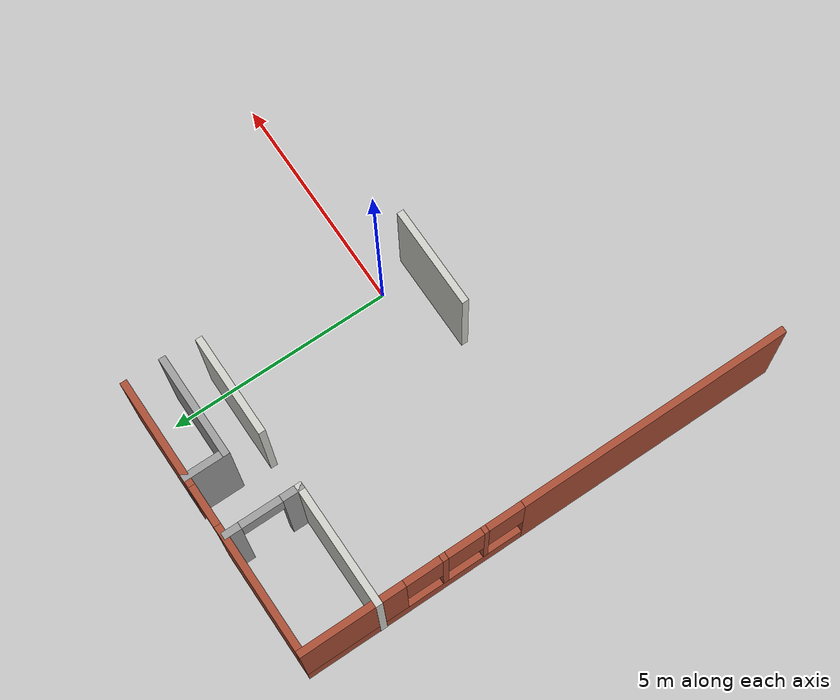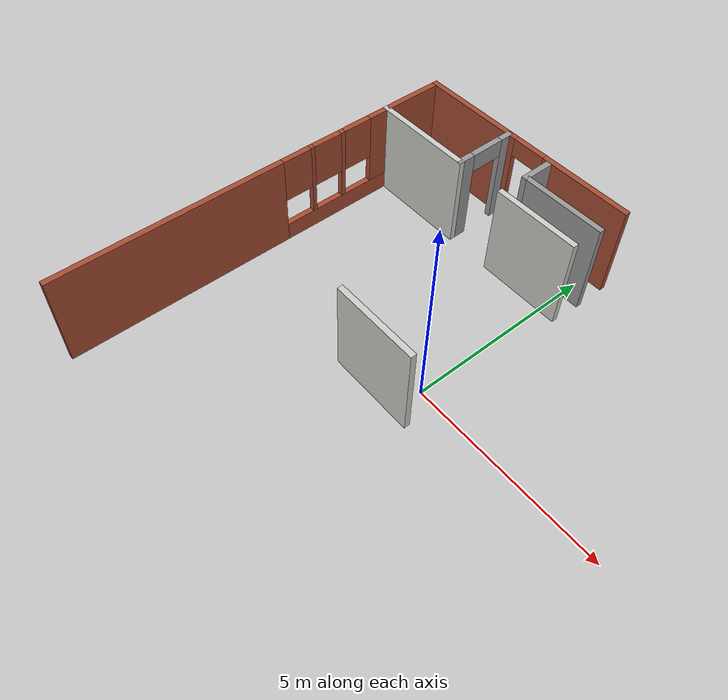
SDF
<sdf version="1.6">
 <model name="project1_building">
  <link name="Wall_0">
   <pose>-5.67233 0 0 0 -0 1.5708</pose>
   <visual name="Wall_0_Visual_0">
    <pose>-2.47085 0 1.25 0 -0 0</pose>
    <geometry><box><size>6.0583 0.15 2.5</size></box></geometry>
    <material>
     <script><uri>file://media/materials/scripts/gazebo.material</uri><name>Gazebo/Bricks</name></script>
     <ambient>1 1 1 1</ambient>
     <shader type="pixel"/>
     <diffuse>1 1 1 1</diffuse>
     <specular>0.2 0.2 0.2 1</specular>
     <emissive>0 0 0 1</emissive>
    </material>
    <meta><layer>0</layer></meta>
   </visual>
   <visual name="Wall_0_Visual_1">
    <pose>3.02915 0 0.25 0 -0 0</pose>
    <geometry><box><size>4.9417 0.15 0.5</size></box></geometry>
    <material>
     <script><uri>file://media/materials/scripts/gazebo.material</uri><name>Gazebo/Bricks</name></script>
     <ambient>1 1 1 1</ambient>
     <shader type="pixel"/>
     <diffuse>1 1 1 1</diffuse>
     <specular>0.2 0.2 0.2 1</specular>
     <emissive>0 0 0 1</emissive>
    </material>
    <meta><layer>0</layer></meta>
   </visual>
   <visual name="Wall_0_Visual_2">
    <pose>1.41086 0 1.5 0 -0 0</pose>
    <geometry><box><size>0.105111 0.15 2</size></box></geometry>
    <material>
     <script><uri>file://media/materials/scripts/gazebo.material</uri><name>Gazebo/Bricks</name></script>
     <ambient>1 1 1 1</ambient>
     <shader type="pixel"/>
     <diffuse>1 1 1 1</diffuse>
     <specular>0.2 0.2 0.2 1</specular>
     <emissive>0 0 0 1</emissive>
    </material>
    <meta><layer>0</layer></meta>
   </visual>
   <visual name="Wall_0_Visual_3">
    <pose>2.32602 0 1.5 0 -0 0</pose>
    <geometry><box><size>0.125224 0.15 2</size></box></geometry>
    <material>
     <script><uri>file://media/materials/scripts/gazebo.material</uri><name>Gazebo/Bricks</name></script>
     <ambient>1 1 1 1</ambient>
     <shader type="pixel"/>
     <diffuse>1 1 1 1</diffuse>
     <specular>0.2 0.2 0.2 1</specular>
     <emissive>0 0 0 1</emissive>
    </material>
    <meta><layer>0</layer></meta>
   </visual>
   <visual name="Wall_0_Visual_4">
    <pose>4.34432 0 1.5 0 -0 0</pose>
    <geometry><box><size>2.31136 0.15 2</size></box></geometry>
    <material>
     <script><uri>file://media/materials/scripts/gazebo.material</uri><name>Gazebo/Bricks</name></script>
     <ambient>1 1 1 1</ambient>
     <shader type="pixel"/>
     <diffuse>1 1 1 1</diffuse>
     <specular>0.2 0.2 0.2 1</specular>
     <emissive>0 0 0 1</emissive>
    </material>
    <meta><layer>0</layer></meta>
   </visual>
   <visual name="Wall_0_Visual_5">
    <pose>0.9583 0 1.9 0 -0 0</pose>
    <geometry><box><size>0.8 0.15 1.2</size></box></geometry>
    <material>
     <script><uri>file://media/materials/scripts/gazebo.material</uri><name>Gazebo/Bricks</name></script>
     <ambient>1 1 1 1</ambient>
     <shader type="pixel"/>
     <diffuse>1 1 1 1</diffuse>
     <specular>0.2 0.2 0.2 1</specular>
     <emissive>0 0 0 1</emissive>
    </material>
    <meta><layer>0</layer></meta>
   </visual>
   <visual name="Wall_0_Visual_6">
    <pose>1.86341 0 1.9 0 -0 0</pose>
    <geometry><box><size>0.8 0.15 1.2</size></box></geometry>
    <material>
     <script><uri>file://media/materials/scripts/gazebo.material</uri><name>Gazebo/Bricks</name></script>
     <ambient>1 1 1 1</ambient>
     <shader type="pixel"/>
     <diffuse>1 1 1 1</diffuse>
     <specular>0.2 0.2 0.2 1</specular>
     <emissive>0 0 0 1</emissive>
    </material>
    <meta><layer>0</layer></meta>
   </visual>
   <visual name="Wall_0_Visual_7">
    <pose>2.78864 0 1.9 0 -0 0</pose>
    <geometry><box><size>0.8 0.15 1.2</size></box></geometry>
    <material>
     <script><uri>file://media/materials/scripts/gazebo.material</uri><name>Gazebo/Bricks</name></script>
     <ambient>1 1 1 1</ambient>
     <shader type="pixel"/>
     <diffuse>1 1 1 1</diffuse>
     <specular>0.2 0.2 0.2 1</specular>
     <emissive>0 0 0 1</emissive>
    </material>
    <meta><layer>0</layer></meta>
   </visual>
   <collision name="Wall_0_Collision_1">
    <pose>3.02915 0 0.25 0 -0 0</pose>
    <geometry><box><size>4.9417 0.15 0.5</size></box></geometry>
    <surface>
     <friction>
      <ode><mu>1</mu><mu2>1</mu2><fdir1>0 0 0</fdir1><slip1>0</slip1><slip2>0</slip2></ode>
      <torsional>
       <coefficient>1</coefficient>
       <patch_radius>0</patch_radius>
       <surface_radius>0</surface_radius>
       <use_patch_radius>1</use_patch_radius>
       <ode><slip>0</slip></ode>
      </torsional>
     </friction>
     <bounce><restitution_coefficient>0</restitution_coefficient><threshold>1e+06</threshold></bounce>
     <contact>
      <collide_without_contact>0</collide_without_contact>
      <collide_without_contact_bitmask>1</collide_without_contact_bitmask>
      <collide_bitmask>1</collide_bitmask>
      <ode>
       <soft_cfm>0</soft_cfm>
       <soft_erp>0.2</soft_erp>
       <kp>1e+13</kp>
       <kd>1</kd>
       <max_vel>0.01</max_vel>
       <min_depth>0</min_depth>
      </ode>
      <bullet>
       <split_impulse>1</split_impulse>
       <split_impulse_penetration_threshold>-0.01</split_impulse_penetration_threshold>
       <soft_cfm>0</soft_cfm>
       <soft_erp>0.2</soft_erp>
       <kp>1e+13</kp>
       <kd>1</kd>
      </bullet>
     </contact>
    </surface>
   </collision>
   <collision name="Wall_0_Collision_0">
    <pose>-2.47085 0 1.25 0 -0 0</pose>
    <geometry><box><size>6.0583 0.15 2.5</size></box></geometry>
    <surface>
     <friction>
      <ode><mu>1</mu><mu2>1</mu2><fdir1>0 0 0</fdir1><slip1>0</slip1><slip2>0</slip2></ode>
      <torsional>
       <coefficient>1</coefficient>
       <patch_radius>0</patch_radius>
       <surface_radius>0</surface_radius>
       <use_patch_radius>1</use_patch_radius>
       <ode><slip>0</slip></ode>
      </torsional>
     </friction>
     <bounce><restitution_coefficient>0</restitution_coefficient><threshold>1e+06</threshold></bounce>
     <contact>
      <collide_without_contact>0</collide_without_contact>
      <collide_without_contact_bitmask>1</collide_without_contact_bitmask>
      <collide_bitmask>1</collide_bitmask>
      <ode>
       <soft_cfm>0</soft_cfm>
       <soft_erp>0.2</soft_erp>
       <kp>1e+13</kp>
       <kd>1</kd>
       <max_vel>0.01</max_vel>
       <min_depth>0</min_depth>
      </ode>
      <bullet>
       <split_impulse>1</split_impulse>
       <split_impulse_penetration_threshold>-0.01</split_impulse_penetration_threshold>
       <soft_cfm>0</soft_cfm>
       <soft_erp>0.2</soft_erp>
       <kp>1e+13</kp>
       <kd>1</kd>
      </bullet>
     </contact>
    </surface>
   </collision>
   <collision name="Wall_0_Collision_2">
    <pose>1.41086 0 1.5 0 -0 0</pose>
    <geometry><box><size>0.105111 0.15 2</size></box></geometry>
    <surface>
     <friction>
      <ode><mu>1</mu><mu2>1</mu2><fdir1>0 0 0</fdir1><slip1>0</slip1><slip2>0</slip2></ode>
      <torsional>
       <coefficient>1</coefficient>
       <patch_radius>0</patch_radius>
       <surface_radius>0</surface_radius>
       <use_patch_radius>1</use_patch_radius>
       <ode><slip>0</slip></ode>
      </torsional>
     </friction>
     <bounce><restitution_coefficient>0</restitution_coefficient><threshold>1e+06</threshold></bounce>
     <contact>
      <collide_without_contact>0</collide_without_contact>
      <collide_without_contact_bitmask>1</collide_without_contact_bitmask>
      <collide_bitmask>1</collide_bitmask>
      <ode>
       <soft_cfm>0</soft_cfm>
       <soft_erp>0.2</soft_erp>
       <kp>1e+13</kp>
       <kd>1</kd>
       <max_vel>0.01</max_vel>
       <min_depth>0</min_depth>
      </ode>
      <bullet>
       <split_impulse>1</split_impulse>
       <split_impulse_penetration_threshold>-0.01</split_impulse_penetration_threshold>
       <soft_cfm>0</soft_cfm>
       <soft_erp>0.2</soft_erp>
       <kp>1e+13</kp>
       <kd>1</kd>
      </bullet>
     </contact>
    </surface>
   </collision>
   <collision name="Wall_0_Collision_5">
    <pose>0.9583 0 1.9 0 -0 0</pose>
    <geometry><box><size>0.8 0.15 1.2</size></box></geometry>
    <surface>
     <friction>
      <ode><mu>1</mu><mu2>1</mu2><fdir1>0 0 0</fdir1><slip1>0</slip1><slip2>0</slip2></ode>
      <torsional>
       <coefficient>1</coefficient>
       <patch_radius>0</patch_radius>
       <surface_radius>0</surface_radius>
       <use_patch_radius>1</use_patch_radius>
       <ode><slip>0</slip></ode>
      </torsional>
     </friction>
     <bounce><restitution_coefficient>0</restitution_coefficient><threshold>1e+06</threshold></bounce>
     <contact>
      <collide_without_contact>0</collide_without_contact>
      <collide_without_contact_bitmask>1</collide_without_contact_bitmask>
      <collide_bitmask>1</collide_bitmask>
      <ode>
       <soft_cfm>0</soft_cfm>
       <soft_erp>0.2</soft_erp>
       <kp>1e+13</kp>
       <kd>1</kd>
       <max_vel>0.01</max_vel>
       <min_depth>0</min_depth>
      </ode>
      <bullet>
       <split_impulse>1</split_impulse>
       <split_impulse_penetration_threshold>-0.01</split_impulse_penetration_threshold>
       <soft_cfm>0</soft_cfm>
       <soft_erp>0.2</soft_erp>
       <kp>1e+13</kp>
       <kd>1</kd>
      </bullet>
     </contact>
    </surface>
   </collision>
   <collision name="Wall_0_Collision_3">
    <pose>2.32602 0 1.5 0 -0 0</pose>
    <geometry><box><size>0.125224 0.15 2</size></box></geometry>
    <surface>
     <friction>
      <ode><mu>1</mu><mu2>1</mu2><fdir1>0 0 0</fdir1><slip1>0</slip1><slip2>0</slip2></ode>
      <torsional>
       <coefficient>1</coefficient>
       <patch_radius>0</patch_radius>
       <surface_radius>0</surface_radius>
       <use_patch_radius>1</use_patch_radius>
       <ode><slip>0</slip></ode>
      </torsional>
     </friction>
     <bounce><restitution_coefficient>0</restitution_coefficient><threshold>1e+06</threshold></bounce>
     <contact>
      <collide_without_contact>0</collide_without_contact>
      <collide_without_contact_bitmask>1</collide_without_contact_bitmask>
      <collide_bitmask>1</collide_bitmask>
      <ode>
       <soft_cfm>0</soft_cfm>
       <soft_erp>0.2</soft_erp>
       <kp>1e+13</kp>
       <kd>1</kd>
       <max_vel>0.01</max_vel>
       <min_depth>0</min_depth>
      </ode>
      <bullet>
       <split_impulse>1</split_impulse>
       <split_impulse_penetration_threshold>-0.01</split_impulse_penetration_threshold>
       <soft_cfm>0</soft_cfm>
       <soft_erp>0.2</soft_erp>
       <kp>1e+13</kp>
       <kd>1</kd>
      </bullet>
     </contact>
    </surface>
   </collision>
   <collision name="Wall_0_Collision_4">
    <pose>4.34432 0 1.5 0 -0 0</pose>
    <geometry><box><size>2.31136 0.15 2</size></box></geometry>
    <surface>
     <friction>
      <ode><mu>1</mu><mu2>1</mu2><fdir1>0 0 0</fdir1><slip1>0</slip1><slip2>0</slip2></ode>
      <torsional>
       <coefficient>1</coefficient>
       <patch_radius>0</patch_radius>
       <surface_radius>0</surface_radius>
       <use_patch_radius>1</use_patch_radius>
       <ode><slip>0</slip></ode>
      </torsional>
     </friction>
     <bounce><restitution_coefficient>0</restitution_coefficient><threshold>1e+06</threshold></bounce>
     <contact>
      <collide_without_contact>0</collide_without_contact>
      <collide_without_contact_bitmask>1</collide_without_contact_bitmask>
      <collide_bitmask>1</collide_bitmask>
      <ode>
       <soft_cfm>0</soft_cfm>
       <soft_erp>0.2</soft_erp>
       <kp>1e+13</kp>
       <kd>1</kd>
       <max_vel>0.01</max_vel>
       <min_depth>0</min_depth>
      </ode>
      <bullet>
       <split_impulse>1</split_impulse>
       <split_impulse_penetration_threshold>-0.01</split_impulse_penetration_threshold>
       <soft_cfm>0</soft_cfm>
       <soft_erp>0.2</soft_erp>
       <kp>1e+13</kp>
       <kd>1</kd>
      </bullet>
     </contact>
    </surface>
   </collision>
   <collision name="Wall_0_Collision_6">
    <pose>1.86341 0 1.9 0 -0 0</pose>
    <geometry><box><size>0.8 0.15 1.2</size></box></geometry>
    <surface>
     <friction>
      <ode><mu>1</mu><mu2>1</mu2><fdir1>0 0 0</fdir1><slip1>0</slip1><slip2>0</slip2></ode>
      <torsional>
       <coefficient>1</coefficient>
       <patch_radius>0</patch_radius>
       <surface_radius>0</surface_radius>
       <use_patch_radius>1</use_patch_radius>
       <ode><slip>0</slip></ode>
      </torsional>
     </friction>
     <bounce><restitution_coefficient>0</restitution_coefficient><threshold>1e+06</threshold></bounce>
     <contact>
      <collide_without_contact>0</collide_without_contact>
      <collide_without_contact_bitmask>1</collide_without_contact_bitmask>
      <collide_bitmask>1</collide_bitmask>
      <ode>
       <soft_cfm>0</soft_cfm>
       <soft_erp>0.2</soft_erp>
       <kp>1e+13</kp>
       <kd>1</kd>
       <max_vel>0.01</max_vel>
       <min_depth>0</min_depth>
      </ode>
      <bullet>
       <split_impulse>1</split_impulse>
       <split_impulse_penetration_threshold>-0.01</split_impulse_penetration_threshold>
       <soft_cfm>0</soft_cfm>
       <soft_erp>0.2</soft_erp>
       <kp>1e+13</kp>
       <kd>1</kd>
      </bullet>
     </contact>
    </surface>
   </collision>
   <collision name="Wall_0_Collision_7">
    <pose>2.78864 0 1.9 0 -0 0</pose>
    <geometry><box><size>0.8 0.15 1.2</size></box></geometry>
    <surface>
     <friction>
      <ode><mu>1</mu><mu2>1</mu2><fdir1>0 0 0</fdir1><slip1>0</slip1><slip2>0</slip2></ode>
      <torsional>
       <coefficient>1</coefficient>
       <patch_radius>0</patch_radius>
       <surface_radius>0</surface_radius>
       <use_patch_radius>1</use_patch_radius>
       <ode><slip>0</slip></ode>
      </torsional>
     </friction>
     <bounce><restitution_coefficient>0</restitution_coefficient><threshold>1e+06</threshold></bounce>
     <contact>
      <collide_without_contact>0</collide_without_contact>
      <collide_without_contact_bitmask>1</collide_without_contact_bitmask>
      <collide_bitmask>1</collide_bitmask>
      <ode>
       <soft_cfm>0</soft_cfm>
       <soft_erp>0.2</soft_erp>
       <kp>1e+13</kp>
       <kd>1</kd>
       <max_vel>0.01</max_vel>
       <min_depth>0</min_depth>
      </ode>
      <bullet>
       <split_impulse>1</split_impulse>
       <split_impulse_penetration_threshold>-0.01</split_impulse_penetration_threshold>
       <soft_cfm>0</soft_cfm>
       <soft_erp>0.2</soft_erp>
       <kp>1e+13</kp>
       <kd>1</kd>
      </bullet>
     </contact>
    </surface>
   </collision>
  </link>
  <link name="Wall_1">
   <pose>-2.62233 5.425 0 0 -0 0</pose>
   <visual name="Wall_1_Visual_0">
    <pose>-1.67324 0 1.25 0 -0 0</pose>
    <geometry><box><size>2.90351 0.15 2.5</size></box></geometry>
    <material>
     <script><uri>file://media/materials/scripts/gazebo.material</uri><name>Gazebo/Bricks</name></script>
     <ambient>1 1 1 1</ambient>
     <shader type="pixel"/>
     <diffuse>1 1 1 1</diffuse>
     <specular>0.2 0.2 0.2 1</specular>
     <emissive>0 0 0 1</emissive>
    </material>
    <meta><layer>0</layer></meta>
   </visual>
   <visual name="Wall_1_Visual_1">
    <pose>1.90176 0 1.25 0 -0 0</pose>
    <geometry><box><size>2.44649 0.15 2.5</size></box></geometry>
    <material>
     <script><uri>file://media/materials/scripts/gazebo.material</uri><name>Gazebo/Bricks</name></script>
     <ambient>1 1 1 1</ambient>
     <shader type="pixel"/>
     <diffuse>1 1 1 1</diffuse>
     <specular>0.2 0.2 0.2 1</specular>
     <emissive>0 0 0 1</emissive>
    </material>
    <meta><layer>0</layer></meta>
   </visual>
   <visual name="Wall_1_Visual_2">
    <pose>0.228513 0 2.25 0 -0 0</pose>
    <geometry><box><size>0.9 0.15 0.5</size></box></geometry>
    <material>
     <script><uri>file://media/materials/scripts/gazebo.material</uri><name>Gazebo/Bricks</name></script>
     <ambient>1 1 1 1</ambient>
     <shader type="pixel"/>
     <diffuse>1 1 1 1</diffuse>
     <specular>0.2 0.2 0.2 1</specular>
     <emissive>0 0 0 1</emissive>
    </material>
    <meta><layer>0</layer></meta>
   </visual>
   <collision name="Wall_1_Collision_0">
    <pose>-1.67324 0 1.25 0 -0 0</pose>
    <geometry><box><size>2.90351 0.15 2.5</size></box></geometry>
    <surface>
     <friction>
      <ode><mu>1</mu><mu2>1</mu2><fdir1>0 0 0</fdir1><slip1>0</slip1><slip2>0</slip2></ode>
      <torsional>
       <coefficient>1</coefficient>
       <patch_radius>0</patch_radius>
       <surface_radius>0</surface_radius>
       <use_patch_radius>1</use_patch_radius>
       <ode><slip>0</slip></ode>
      </torsional>
     </friction>
     <bounce><restitution_coefficient>0</restitution_coefficient><threshold>1e+06</threshold></bounce>
     <contact>
      <collide_without_contact>0</collide_without_contact>
      <collide_without_contact_bitmask>1</collide_without_contact_bitmask>
      <collide_bitmask>1</collide_bitmask>
      <ode>
       <soft_cfm>0</soft_cfm>
       <soft_erp>0.2</soft_erp>
       <kp>1e+13</kp>
       <kd>1</kd>
       <max_vel>0.01</max_vel>
       <min_depth>0</min_depth>
      </ode>
      <bullet>
       <split_impulse>1</split_impulse>
       <split_impulse_penetration_threshold>-0.01</split_impulse_penetration_threshold>
       <soft_cfm>0</soft_cfm>
       <soft_erp>0.2</soft_erp>
       <kp>1e+13</kp>
       <kd>1</kd>
      </bullet>
     </contact>
    </surface>
   </collision>
   <collision name="Wall_1_Collision_2">
    <pose>0.228513 0 2.25 0 -0 0</pose>
    <geometry><box><size>0.9 0.15 0.5</size></box></geometry>
    <surface>
     <friction>
      <ode><mu>1</mu><mu2>1</mu2><fdir1>0 0 0</fdir1><slip1>0</slip1><slip2>0</slip2></ode>
      <torsional>
       <coefficient>1</coefficient>
       <patch_radius>0</patch_radius>
       <surface_radius>0</surface_radius>
       <use_patch_radius>1</use_patch_radius>
       <ode><slip>0</slip></ode>
      </torsional>
     </friction>
     <bounce><restitution_coefficient>0</restitution_coefficient><threshold>1e+06</threshold></bounce>
     <contact>
      <collide_without_contact>0</collide_without_contact>
      <collide_without_contact_bitmask>1</collide_without_contact_bitmask>
      <collide_bitmask>1</collide_bitmask>
      <ode>
       <soft_cfm>0</soft_cfm>
       <soft_erp>0.2</soft_erp>
       <kp>1e+13</kp>
       <kd>1</kd>
       <max_vel>0.01</max_vel>
       <min_depth>0</min_depth>
      </ode>
      <bullet>
       <split_impulse>1</split_impulse>
       <split_impulse_penetration_threshold>-0.01</split_impulse_penetration_threshold>
       <soft_cfm>0</soft_cfm>
       <soft_erp>0.2</soft_erp>
       <kp>1e+13</kp>
       <kd>1</kd>
      </bullet>
     </contact>
    </surface>
   </collision>
   <collision name="Wall_1_Collision_1">
    <pose>1.90176 0 1.25 0 -0 0</pose>
    <geometry><box><size>2.44649 0.15 2.5</size></box></geometry>
    <surface>
     <friction>
      <ode><mu>1</mu><mu2>1</mu2><fdir1>0 0 0</fdir1><slip1>0</slip1><slip2>0</slip2></ode>
      <torsional>
       <coefficient>1</coefficient>
       <patch_radius>0</patch_radius>
       <surface_radius>0</surface_radius>
       <use_patch_radius>1</use_patch_radius>
       <ode><slip>0</slip></ode>
      </torsional>
     </friction>
     <bounce><restitution_coefficient>0</restitution_coefficient><threshold>1e+06</threshold></bounce>
     <contact>
      <collide_without_contact>0</collide_without_contact>
      <collide_without_contact_bitmask>1</collide_without_contact_bitmask>
      <collide_bitmask>1</collide_bitmask>
      <ode>
       <soft_cfm>0</soft_cfm>
       <soft_erp>0.2</soft_erp>
       <kp>1e+13</kp>
       <kd>1</kd>
       <max_vel>0.01</max_vel>
       <min_depth>0</min_depth>
      </ode>
      <bullet>
       <split_impulse>1</split_impulse>
       <split_impulse_penetration_threshold>-0.01</split_impulse_penetration_threshold>
       <soft_cfm>0</soft_cfm>
       <soft_erp>0.2</soft_erp>
       <kp>1e+13</kp>
       <kd>1</kd>
      </bullet>
     </contact>
    </surface>
   </collision>
  </link>
  <link name="Wall_16">
   <pose>-0.652617 4.575 0 0 -0 3.14159</pose>
   <visual name="Wall_16_Visual">
    <pose>0 0 1.25 0 -0 0</pose>
    <geometry><box><size>2.31058 0.15 2.5</size></box></geometry>
    <material>
     <script><uri>file://media/materials/scripts/gazebo.material</uri><name>Gazebo/Grey</name></script>
     <ambient>1 1 1 1</ambient>
     <shader type="pixel"/>
     <diffuse>0.7 0.7 0.7 1</diffuse>
     <specular>0.01 0.01 0.01 1</specular>
     <emissive>0 0 0 1</emissive>
    </material>
    <meta><layer>0</layer></meta>
   </visual>
   <collision name="Wall_16_Collision">
    <pose>0 0 1.25 0 -0 0</pose>
    <geometry><box><size>2.31058 0.15 2.5</size></box></geometry>
    <surface>
     <friction>
      <ode><mu>1</mu><mu2>1</mu2><fdir1>0 0 0</fdir1><slip1>0</slip1><slip2>0</slip2></ode>
      <torsional>
       <coefficient>1</coefficient>
       <patch_radius>0</patch_radius>
       <surface_radius>0</surface_radius>
       <use_patch_radius>1</use_patch_radius>
       <ode><slip>0</slip></ode>
      </torsional>
     </friction>
     <bounce><restitution_coefficient>0</restitution_coefficient><threshold>1e+06</threshold></bounce>
     <contact>
      <collide_without_contact>0</collide_without_contact>
      <collide_without_contact_bitmask>1</collide_without_contact_bitmask>
      <collide_bitmask>1</collide_bitmask>
      <ode>
       <soft_cfm>0</soft_cfm>
       <soft_erp>0.2</soft_erp>
       <kp>1e+13</kp>
       <kd>1</kd>
       <max_vel>0.01</max_vel>
       <min_depth>0</min_depth>
      </ode>
      <bullet>
       <split_impulse>1</split_impulse>
       <split_impulse_penetration_threshold>-0.01</split_impulse_penetration_threshold>
       <soft_cfm>0</soft_cfm>
       <soft_erp>0.2</soft_erp>
       <kp>1e+13</kp>
       <kd>1</kd>
      </bullet>
     </contact>
    </surface>
   </collision>
  </link>
  <link name="Wall_17">
   <pose>-1.73291 5 0 0 -0 1.5708</pose>
   <visual name="Wall_17_Visual">
    <pose>0 0 1.25 0 -0 0</pose>
    <geometry><box><size>1 0.15 2.5</size></box></geometry>
    <material>
     <script><uri>file://media/materials/scripts/gazebo.material</uri><name>Gazebo/Grey</name></script>
     <ambient>1 1 1 1</ambient>
     <shader type="pixel"/>
     <diffuse>0.7 0.7 0.7 1</diffuse>
     <specular>0.01 0.01 0.01 1</specular>
     <emissive>0 0 0 1</emissive>
    </material>
    <meta><layer>0</layer></meta>
   </visual>
   <collision name="Wall_17_Collision">
    <pose>0 0 1.25 0 -0 0</pose>
    <geometry><box><size>1 0.15 2.5</size></box></geometry>
    <surface>
     <friction>
      <ode><mu>1</mu><mu2>1</mu2><fdir1>0 0 0</fdir1><slip1>0</slip1><slip2>0</slip2></ode>
      <torsional>
       <coefficient>1</coefficient>
       <patch_radius>0</patch_radius>
       <surface_radius>0</surface_radius>
       <use_patch_radius>1</use_patch_radius>
       <ode><slip>0</slip></ode>
      </torsional>
     </friction>
     <bounce><restitution_coefficient>0</restitution_coefficient><threshold>1e+06</threshold></bounce>
     <contact>
      <collide_without_contact>0</collide_without_contact>
      <collide_without_contact_bitmask>1</collide_without_contact_bitmask>
      <collide_bitmask>1</collide_bitmask>
      <ode>
       <soft_cfm>0</soft_cfm>
       <soft_erp>0.2</soft_erp>
       <kp>1e+13</kp>
       <kd>1</kd>
       <max_vel>0.01</max_vel>
       <min_depth>0</min_depth>
      </ode>
      <bullet>
       <split_impulse>1</split_impulse>
       <split_impulse_penetration_threshold>-0.01</split_impulse_penetration_threshold>
       <soft_cfm>0</soft_cfm>
       <soft_erp>0.2</soft_erp>
       <kp>1e+13</kp>
       <kd>1</kd>
      </bullet>
     </contact>
    </surface>
   </collision>
  </link>
  <link name="Wall_19">
   <pose>-3.07768 4.58329 0 0 0 -1.5708</pose>
   <visual name="Wall_19_Visual_0">
    <pose>-0.690399 0 1.25 0 -0 0</pose>
    <geometry><box><size>0.369202 0.15 2.5</size></box></geometry>
    <material>
     <script><uri>file://media/materials/scripts/gazebo.material</uri><name>Gazebo/Grey</name></script>
     <ambient>1 1 1 1</ambient>
     <shader type="pixel"/>
     <diffuse>0.7 0.7 0.7 1</diffuse>
     <specular>0.01 0.01 0.01 1</specular>
     <emissive>0 0 0 1</emissive>
    </material>
    <meta><layer>0</layer></meta>
   </visual>
   <visual name="Wall_19_Visual_1">
    <pose>0.634601 0 1.25 0 -0 0</pose>
    <geometry><box><size>0.480798 0.15 2.5</size></box></geometry>
    <material>
     <script><uri>file://media/materials/scripts/gazebo.material</uri><name>Gazebo/Grey</name></script>
     <ambient>1 1 1 1</ambient>
     <shader type="pixel"/>
     <diffuse>0.7 0.7 0.7 1</diffuse>
     <specular>0.01 0.01 0.01 1</specular>
     <emissive>0 0 0 1</emissive>
    </material>
    <meta><layer>0</layer></meta>
   </visual>
   <visual name="Wall_19_Visual_2">
    <pose>-0.055798 0 2.25 0 -0 0</pose>
    <geometry><box><size>0.9 0.15 0.5</size></box></geometry>
    <material>
     <script><uri>file://media/materials/scripts/gazebo.material</uri><name>Gazebo/Grey</name></script>
     <ambient>1 1 1 1</ambient>
     <shader type="pixel"/>
     <diffuse>0.7 0.7 0.7 1</diffuse>
     <specular>0.01 0.01 0.01 1</specular>
     <emissive>0 0 0 1</emissive>
    </material>
    <meta><layer>0</layer></meta>
   </visual>
   <collision name="Wall_19_Collision_0">
    <pose>-0.690399 0 1.25 0 -0 0</pose>
    <geometry><box><size>0.369202 0.15 2.5</size></box></geometry>
    <surface>
     <friction>
      <ode><mu>1</mu><mu2>1</mu2><fdir1>0 0 0</fdir1><slip1>0</slip1><slip2>0</slip2></ode>
      <torsional>
       <coefficient>1</coefficient>
       <patch_radius>0</patch_radius>
       <surface_radius>0</surface_radius>
       <use_patch_radius>1</use_patch_radius>
       <ode><slip>0</slip></ode>
      </torsional>
     </friction>
     <bounce><restitution_coefficient>0</restitution_coefficient><threshold>1e+06</threshold></bounce>
     <contact>
      <collide_without_contact>0</collide_without_contact>
      <collide_without_contact_bitmask>1</collide_without_contact_bitmask>
      <collide_bitmask>1</collide_bitmask>
      <ode>
       <soft_cfm>0</soft_cfm>
       <soft_erp>0.2</soft_erp>
       <kp>1e+13</kp>
       <kd>1</kd>
       <max_vel>0.01</max_vel>
       <min_depth>0</min_depth>
      </ode>
      <bullet>
       <split_impulse>1</split_impulse>
       <split_impulse_penetration_threshold>-0.01</split_impulse_penetration_threshold>
       <soft_cfm>0</soft_cfm>
       <soft_erp>0.2</soft_erp>
       <kp>1e+13</kp>
       <kd>1</kd>
      </bullet>
     </contact>
    </surface>
   </collision>
   <collision name="Wall_19_Collision_1">
    <pose>0.634601 0 1.25 0 -0 0</pose>
    <geometry><box><size>0.480798 0.15 2.5</size></box></geometry>
    <surface>
     <friction>
      <ode><mu>1</mu><mu2>1</mu2><fdir1>0 0 0</fdir1><slip1>0</slip1><slip2>0</slip2></ode>
      <torsional>
       <coefficient>1</coefficient>
       <patch_radius>0</patch_radius>
       <surface_radius>0</surface_radius>
       <use_patch_radius>1</use_patch_radius>
       <ode><slip>0</slip></ode>
      </torsional>
     </friction>
     <bounce><restitution_coefficient>0</restitution_coefficient><threshold>1e+06</threshold></bounce>
     <contact>
      <collide_without_contact>0</collide_without_contact>
      <collide_without_contact_bitmask>1</collide_without_contact_bitmask>
      <collide_bitmask>1</collide_bitmask>
      <ode>
       <soft_cfm>0</soft_cfm>
       <soft_erp>0.2</soft_erp>
       <kp>1e+13</kp>
       <kd>1</kd>
       <max_vel>0.01</max_vel>
       <min_depth>0</min_depth>
      </ode>
      <bullet>
       <split_impulse>1</split_impulse>
       <split_impulse_penetration_threshold>-0.01</split_impulse_penetration_threshold>
       <soft_cfm>0</soft_cfm>
       <soft_erp>0.2</soft_erp>
       <kp>1e+13</kp>
       <kd>1</kd>
      </bullet>
     </contact>
    </surface>
   </collision>
   <collision name="Wall_19_Collision_2">
    <pose>-0.055798 0 2.25 0 -0 0</pose>
    <geometry><box><size>0.9 0.15 0.5</size></box></geometry>
    <surface>
     <friction>
      <ode><mu>1</mu><mu2>1</mu2><fdir1>0 0 0</fdir1><slip1>0</slip1><slip2>0</slip2></ode>
      <torsional>
       <coefficient>1</coefficient>
       <patch_radius>0</patch_radius>
       <surface_radius>0</surface_radius>
       <use_patch_radius>1</use_patch_radius>
       <ode><slip>0</slip></ode>
      </torsional>
     </friction>
     <bounce><restitution_coefficient>0</restitution_coefficient><threshold>1e+06</threshold></bounce>
     <contact>
      <collide_without_contact>0</collide_without_contact>
      <collide_without_contact_bitmask>1</collide_without_contact_bitmask>
      <collide_bitmask>1</collide_bitmask>
      <ode>
       <soft_cfm>0</soft_cfm>
       <soft_erp>0.2</soft_erp>
       <kp>1e+13</kp>
       <kd>1</kd>
       <max_vel>0.01</max_vel>
       <min_depth>0</min_depth>
      </ode>
      <bullet>
       <split_impulse>1</split_impulse>
       <split_impulse_penetration_threshold>-0.01</split_impulse_penetration_threshold>
       <soft_cfm>0</soft_cfm>
       <soft_erp>0.2</soft_erp>
       <kp>1e+13</kp>
       <kd>1</kd>
      </bullet>
     </contact>
    </surface>
   </collision>
  </link>
  <link name="Wall_20">
   <pose>-4.37767 3.78329 0 0 -0 3.14159</pose>
   <inertial>
    <mass>1</mass>
    <inertia><ixx>1</ixx><ixy>0</ixy><ixz>0</ixz><iyy>1</iyy><iyz>0</iyz><izz>1</izz></inertia>
   </inertial>
   <visual name="Wall_20_Visual">
    <pose>0 0 1.25 0 -0 0</pose>
    <geometry><box><size>2.75 0.15 2.5</size></box></geometry>
    <material>
     <script><uri>file://media/materials/scripts/gazebo.material</uri><name>Gazebo/CeilingTiled</name></script>
     <ambient>1 1 1 1</ambient>
     <shader type="pixel"><normal_map>__default__</normal_map></shader>
     <diffuse>1 1 1 1</diffuse>
     <specular>0 0 0 1</specular>
     <emissive>0 0 0 1</emissive>
    </material>
    <meta><layer>0</layer></meta>
   </visual>
   <collision name="Wall_20_Collision">
    <pose>0 0 1.25 0 -0 0</pose>
    <geometry><box><size>2.75 0.15 2.5</size></box></geometry>
    <surface>
     <friction>
      <ode><mu>1</mu><mu2>1</mu2><fdir1>0 0 0</fdir1><slip1>0</slip1><slip2>0</slip2></ode>
      <torsional>
       <coefficient>1</coefficient>
       <patch_radius>0</patch_radius>
       <surface_radius>0</surface_radius>
       <use_patch_radius>1</use_patch_radius>
       <ode><slip>0</slip></ode>
      </torsional>
     </friction>
     <bounce><restitution_coefficient>0</restitution_coefficient><threshold>1e+06</threshold></bounce>
     <contact>
      <collide_without_contact>0</collide_without_contact>
      <collide_without_contact_bitmask>1</collide_without_contact_bitmask>
      <collide_bitmask>1</collide_bitmask>
      <ode>
       <soft_cfm>0</soft_cfm>
       <soft_erp>0.2</soft_erp>
       <kp>1e+13</kp>
       <kd>1</kd>
       <max_vel>0.01</max_vel>
       <min_depth>0</min_depth>
      </ode>
      <bullet>
       <split_impulse>1</split_impulse>
       <split_impulse_penetration_threshold>-0.01</split_impulse_penetration_threshold>
       <soft_cfm>0</soft_cfm>
       <soft_erp>0.2</soft_erp>
       <kp>1e+13</kp>
       <kd>1</kd>
      </bullet>
     </contact>
    </surface>
   </collision>
  </link>
  <link name="Wall_22">
   <pose>-0.680066 3.79431 0 0 -0 0</pose>
   <visual name="Wall_22_Visual">
    <pose>0 0 1.25 0 -0 0</pose>
    <geometry><box><size>2.25 0.15 2.5</size></box></geometry>
    <material>
     <script><uri>file://media/materials/scripts/gazebo.material</uri><name>Gazebo/CeilingTiled</name></script>
     <ambient>1 1 1 1</ambient>
     <shader type="pixel"/>
     <diffuse>1 1 1 1</diffuse>
     <specular>0 0 0 1</specular>
     <emissive>0 0 0 1</emissive>
    </material>
    <meta><layer>0</layer></meta>
   </visual>
   <collision name="Wall_22_Collision">
    <pose>0 0 1.25 0 -0 0</pose>
    <geometry><box><size>2.25 0.15 2.5</size></box></geometry>
    <surface>
     <friction>
      <ode><mu>1</mu><mu2>1</mu2><fdir1>0 0 0</fdir1><slip1>0</slip1><slip2>0</slip2></ode>
      <torsional>
       <coefficient>1</coefficient>
       <patch_radius>0</patch_radius>
       <surface_radius>0</surface_radius>
       <use_patch_radius>1</use_patch_radius>
       <ode><slip>0</slip></ode>
      </torsional>
     </friction>
     <bounce><restitution_coefficient>0</restitution_coefficient><threshold>1e+06</threshold></bounce>
     <contact>
      <collide_without_contact>0</collide_without_contact>
      <collide_without_contact_bitmask>1</collide_without_contact_bitmask>
      <collide_bitmask>1</collide_bitmask>
      <ode>
       <soft_cfm>0</soft_cfm>
       <soft_erp>0.2</soft_erp>
       <kp>1e+13</kp>
       <kd>1</kd>
       <max_vel>0.01</max_vel>
       <min_depth>0</min_depth>
      </ode>
      <bullet>
       <split_impulse>1</split_impulse>
       <split_impulse_penetration_threshold>-0.01</split_impulse_penetration_threshold>
       <soft_cfm>0</soft_cfm>
       <soft_erp>0.2</soft_erp>
       <kp>1e+13</kp>
       <kd>1</kd>
      </bullet>
     </contact>
    </surface>
   </collision>
  </link>
  <link name="Wall_24">
   <pose>-0.680066 -0.805686 0 0 -0 3.14159</pose>
   <visual name="Wall_24_Visual">
    <pose>0 0 1.25 0 -0 0</pose>
    <geometry><box><size>2.25 0.15 2.5</size></box></geometry>
    <material>
     <script><uri>file://media/materials/scripts/gazebo.material</uri><name>Gazebo/CeilingTiled</name></script>
     <ambient>1 1 1 1</ambient>
     <shader type="pixel"/>
     <diffuse>1 1 1 1</diffuse>
     <specular>0 0 0 1</specular>
     <emissive>0 0 0 1</emissive>
    </material>
    <meta><layer>0</layer></meta>
   </visual>
   <collision name="Wall_24_Collision">
    <pose>0 0 1.25 0 -0 0</pose>
    <geometry><box><size>2.25 0.15 2.5</size></box></geometry>
    <surface>
     <friction>
      <ode><mu>1</mu><mu2>1</mu2><fdir1>0 0 0</fdir1><slip1>0</slip1><slip2>0</slip2></ode>
      <torsional>
       <coefficient>1</coefficient>
       <patch_radius>0</patch_radius>
       <surface_radius>0</surface_radius>
       <use_patch_radius>1</use_patch_radius>
       <ode><slip>0</slip></ode>
      </torsional>
     </friction>
     <bounce><restitution_coefficient>0</restitution_coefficient><threshold>1e+06</threshold></bounce>
     <contact>
      <collide_without_contact>0</collide_without_contact>
      <collide_without_contact_bitmask>1</collide_without_contact_bitmask>
      <collide_bitmask>1</collide_bitmask>
      <ode>
       <soft_cfm>0</soft_cfm>
       <soft_erp>0.2</soft_erp>
       <kp>1e+13</kp>
       <kd>1</kd>
       <max_vel>0.01</max_vel>
       <min_depth>0</min_depth>
      </ode>
      <bullet>
       <split_impulse>1</split_impulse>
       <split_impulse_penetration_threshold>-0.01</split_impulse_penetration_threshold>
       <soft_cfm>0</soft_cfm>
       <soft_erp>0.2</soft_erp>
       <kp>1e+13</kp>
       <kd>1</kd>
      </bullet>
     </contact>
    </surface>
   </collision>
  </link>
  <static>1</static>
 </model>
</sdf>
